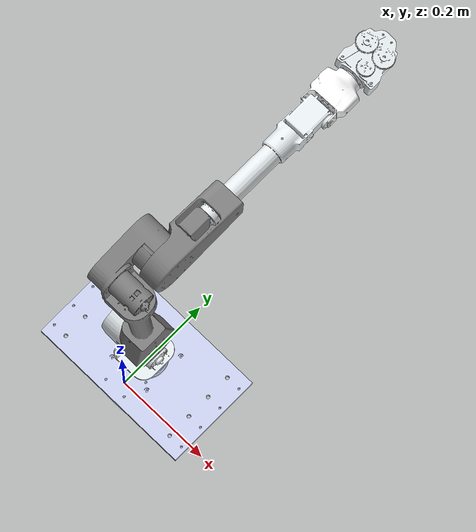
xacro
<?xml version="1.0"?>
<robot xmlns:xacro="http://www.ros.org/wiki/xacro" name="DICEROX_ARM">
    <xacro:arg name="initial_positions_file" default="initial_positions.yaml" />

    <!-- Import DICEROX_ARM urdf file -->
    <xacro:include filename="$(find dicerox_arm_confv2)/urdf/DICEROX_ARM.urdf" />

    <!-- Import control_xacro -->
    <xacro:include filename="DICEROX_ARM.ros2_control.xacro" />

    <xacro:DICEROX_ARM_ros2_control name="FakeSystem" initial_positions_file="$(arg initial_positions_file)"/>

</robot>

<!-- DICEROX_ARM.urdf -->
<robot
  name="dicer_arm_confv2">
  <link
    name="base_link">
    <inertial>
      <origin
        xyz="-1.8478E-08 0.045209 0.011654"
        rpy="0 0 0" />
      <mass
        value="1.2192" />
      <inertia
        ixx="0.0026863"
        ixy="2.2855E-10"
        ixz="1.885E-10"
        iyy="0.0073576"
        iyz="-2.3798E-05"
        izz="0.0098799" />
    </inertial>
    <visual>
      <origin
        xyz="0 0 0"
        rpy="0 0 0" />
      <geometry>
        <mesh
          filename="package://dicerox_arm_confv2/meshes/base_link.STL" />
      </geometry>
      <material
        name="">
        <color
          rgba="0.79216 0.81961 0.93333 1" />
      </material>
    </visual>
    <collision>
      <origin
        xyz="0 0 0"
        rpy="0 0 0" />
      <geometry>
        <mesh
          filename="package://dicerox_arm_confv2/meshes/base_link.STL" />
      </geometry>
    </collision>
  </link>
  <link
    name="Link1">
    <inertial>
      <origin
        xyz="2.6111E-05 0.032065 0.074256"
        rpy="0 0 0" />
      <mass
        value="0.34735" />
      <inertia
        ixx="0.0004136"
        ixy="-2.218E-08"
        ixz="4.0455E-07"
        iyy="0.0005331"
        iyz="-1.7648E-05"
        izz="0.00024227" />
    </inertial>
    <visual>
      <origin
        xyz="0 0 0"
        rpy="0 0 0" />
      <geometry>
        <mesh
          filename="package://dicerox_arm_confv2/meshes/Link1.STL" />
      </geometry>
      <material
        name="">
        <color
          rgba="0.89804 0.92157 0.92941 1" />
      </material>
    </visual>
    <collision>
      <origin
        xyz="0 0 0"
        rpy="0 0 0" />
      <geometry>
        <mesh
          filename="package://dicerox_arm_confv2/meshes/Link1.STL" />
      </geometry>
    </collision>
  </link>
  <joint
    name="Joint1"
    type="revolute">
    <origin
      xyz="0 0.05923 0.077"
      rpy="0 0 1.5708" />
    <parent
      link="base_link" />
    <child
      link="Link1" />
    <axis
      xyz="0 0 1" />
    <limit
      lower="-1.5708"
      upper="1.5708"
      effort="100"
      velocity="100" />
    <dynamics
      damping="0.1"
      friction="0.1" />
  </joint>
  <link
    name="Link2">
    <inertial>
      <origin
        xyz="0.0020051 0.21873 -0.023798"
        rpy="0 0 0" />
      <mass
        value="1.0469" />
      <inertia
        ixx="0.0019691"
        ixy="5.5809E-05"
        ixz="-5.9991E-06"
        iyy="0.00095213"
        iyz="9.9465E-05"
        izz="0.0023928" />
    </inertial>
    <visual>
      <origin
        xyz="0 0 0"
        rpy="0 0 0" />
      <geometry>
        <mesh
          filename="package://dicerox_arm_confv2/meshes/Link2.STL" />
      </geometry>
      <material
        name="">
        <color
          rgba="0.49804 0.49804 0.49804 1" />
      </material>
    </visual>
    <collision>
      <origin
        xyz="0 0 0"
        rpy="0 0 0" />
      <geometry>
        <mesh
          filename="package://dicerox_arm_confv2/meshes/Link2.STL" />
      </geometry>
    </collision>
  </link>
  <joint
    name="Joint2"
    type="revolute">
    <origin
      xyz="0 -0.017 0.1165"
      rpy="1.5708 0 0" />
    <parent
      link="Link1" />
    <child
      link="Link2" />
    <axis
      xyz="0 0 1" />
    <limit
      lower="-1.5708"
      upper="1.5708"
      effort="100"
      velocity="100" />
    <dynamics
      damping="0.1"
      friction="0.1" />
  </joint>
  <link
    name="Link3">
    <inertial>
      <origin
        xyz="-0.0014488 -0.060369 -0.008698"
        rpy="0 0 0" />
      <mass
        value="0.49703" />
      <inertia
        ixx="0.0015508"
        ixy="-7.1129E-05"
        ixz="-1.6748E-05"
        iyy="0.00048269"
        iyz="-0.0001533"
        izz="0.0016851" />
    </inertial>
    <visual>
      <origin
        xyz="0 0 0"
        rpy="0 0 0" />
      <geometry>
        <mesh
          filename="package://dicerox_arm_confv2/meshes/Link3.STL" />
      </geometry>
      <material
        name="">
        <color
          rgba="0.49804 0.49804 0.49804 1" />
      </material>
    </visual>
    <collision>
      <origin
        xyz="0 0 0"
        rpy="0 0 0" />
      <geometry>
        <mesh
          filename="package://dicerox_arm_confv2/meshes/Link3.STL" />
      </geometry>
    </collision>
  </link>
  <joint
    name="Joint3"
    type="revolute">
    <origin
      xyz="0.056326 0.43175 0"
      rpy="0 0 1.5708" />
    <parent
      link="Link2" />
    <child
      link="Link3" />
    <axis
      xyz="0 0 1" />
    <limit
      lower="-1.5708"
      upper="1.5708"
      effort="100"
      velocity="100" />
    <dynamics
      damping="0.1"
      friction="0.1" />
  </joint>
  <link
    name="Link4">
    <inertial>
      <origin
        xyz="-0.00031656 -0.0052206 0.055039"
        rpy="0 0 0" />
      <mass
        value="0.26427" />
      <inertia
        ixx="0.00028078"
        ixy="8.3196E-07"
        ixz="5.0153E-08"
        iyy="0.00029264"
        iyz="2.0275E-05"
        izz="8.1628E-05" />
    </inertial>
    <visual>
      <origin
        xyz="0 0 0"
        rpy="0 0 0" />
      <geometry>
        <mesh
          filename="package://dicerox_arm_confv2/meshes/Link4.STL" />
      </geometry>
      <material
        name="">
        <color
          rgba="0.89804 0.92157 0.92941 1" />
      </material>
    </visual>
    <collision>
      <origin
        xyz="0 0 0"
        rpy="0 0 0" />
      <geometry>
        <mesh
          filename="package://dicerox_arm_confv2/meshes/Link4.STL" />
      </geometry>
    </collision>
  </link>
  <joint
    name="Joint4"
    type="revolute">
    <origin
      xyz="-0.0083883 -0.21033 -0.016"
      rpy="1.5157 1.5708 0" />
    <parent
      link="Link3" />
    <child
      link="Link4" />
    <axis
      xyz="0 0.094774 -0.9955" />
    <limit
      lower="-1.5708"
      upper="1.5708"
      effort="100"
      velocity="100" />
    <dynamics
      damping="0.1"
      friction="0.1" />
  </joint>
  <link
    name="Link5">
    <inertial>
      <origin
        xyz="-0.00324138735582469 -0.0491171799377679 -0.0333859007032062"
        rpy="0 0 0" />
      <mass
        value="0.176232004746393" />
      <inertia
        ixx="0.000118756529816677"
        ixy="-9.61698250555991E-07"
        ixz="-4.89044635141133E-06"
        iyy="8.9648729603517E-05"
        iyz="-1.62391438317864E-06"
        izz="6.60943336243957E-05" />
    </inertial>
    <visual>
      <origin
        xyz="0 0 0"
        rpy="0 0 0" />
      <geometry>
        <mesh
          filename="package://dicerox_arm_confv2/meshes/Link5.STL" />
      </geometry>
      <material
        name="">
        <color
          rgba="1 1 1 1" />
      </material>
    </visual>
    <collision>
      <origin
        xyz="0 0 0"
        rpy="0 0 0" />
      <geometry>
        <mesh
          filename="package://dicerox_arm_confv2/meshes/Link5.STL" />
      </geometry>
    </collision>
  </link>
  <joint
    name="Joint5"
    type="revolute">
    <origin
      xyz="-0.033439 -0.013485 0.16296"
      rpy="-1.5708 -0.055057 1.5708" />
    <parent
      link="Link4" />
    <child
      link="Link5" />
    <axis
      xyz="0.060233 -0.0024022 0.99818" />
    <limit
      lower="-1.5708"
      upper="1.5708"
      effort="100"
      velocity="100" />
    <dynamics
      damping="0.1"
      friction="0.1" />
  </joint>
  <link
    name="Link6">
    <inertial>
      <origin
        xyz="-0.003664 0.00074589 -0.041672"
        rpy="0 0 0" />
      <mass
        value="0.24097" />
      <inertia
        ixx="0.00011433"
        ixy="-1.5042E-07"
        ixz="1.3892E-06"
        iyy="0.00011134"
        iyz="-3.0338E-06"
        izz="5.1016E-05" />
    </inertial>
    <visual>
      <origin
        xyz="0 0 0"
        rpy="0 0 0" />
      <geometry>
        <mesh
          filename="package://dicerox_arm_confv2/meshes/Link6.STL" />
      </geometry>
      <material
        name="">
        <color
          rgba="0.89804 0.92157 0.92941 1" />
      </material>
    </visual>
    <collision>
      <origin
        xyz="0 0 0"
        rpy="0 0 0" />
      <geometry>
        <mesh
          filename="package://dicerox_arm_confv2/meshes/Link6.STL" />
      </geometry>
    </collision>
  </link>
  <joint
    name="Joint6"
    type="revolute">
    <origin
      xyz="-0.0038909 -0.081813 -0.032635"
      rpy="1.5708 0 3.1416" />
    <parent
      link="Link5" />
    <child
      link="Link6" />
    <axis
      xyz="-0.023518 0.00098673 0.99972" />
    <limit
      lower="-1.5708"
      upper="1.5708"
      effort="100"
      velocity="100" />
    <dynamics
      damping="0.1"
      friction="0.1" />
  </joint>
</robot>
